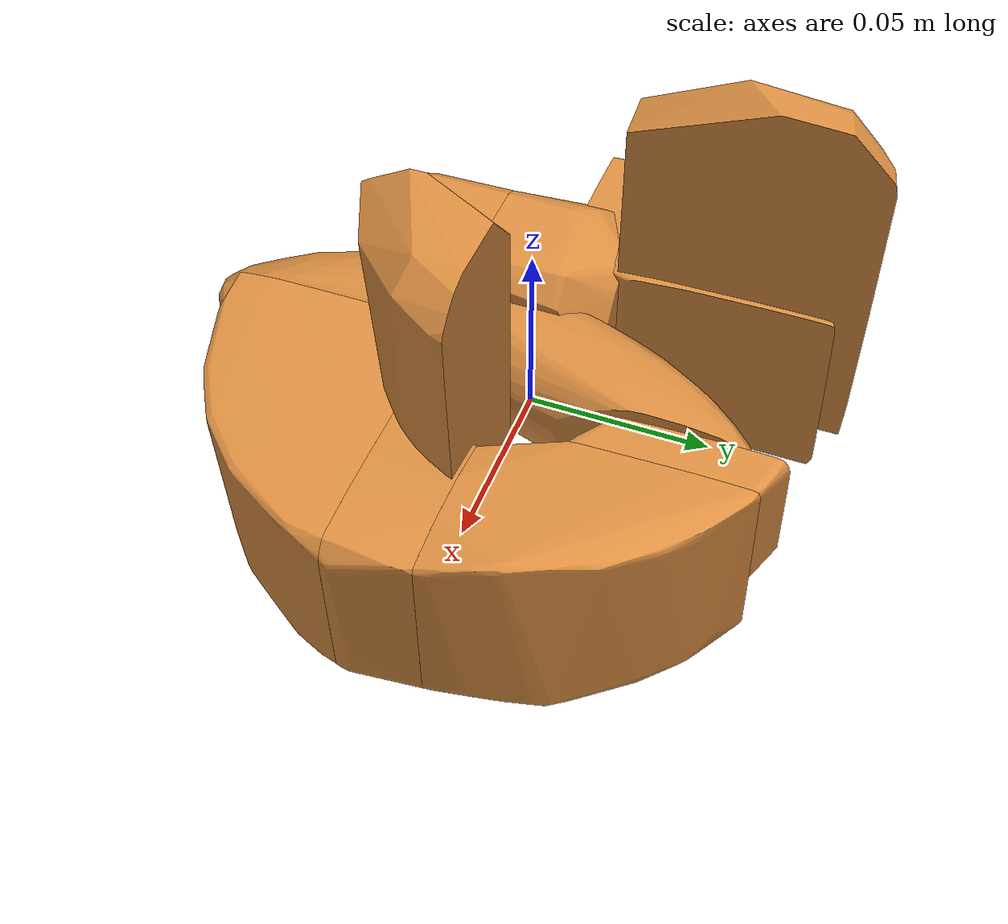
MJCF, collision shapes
<mujoco model="gun_functional">
  <compiler angle="radian"/>

  <asset>
    <material name="object" rgba="0.85 0.55 0.25 1"/>
    <mesh name="object_visual_mesh" file="source/top_watertight_tiny.obj"/>
    <mesh name="object_collision_mesh_000" file="collision/hull_000.obj"/>
    <mesh name="object_collision_mesh_001" file="collision/hull_001.obj"/>
    <mesh name="object_collision_mesh_002" file="collision/hull_002.obj"/>
    <mesh name="object_collision_mesh_003" file="collision/hull_003.obj"/>
    <mesh name="object_collision_mesh_004" file="collision/hull_004.obj"/>
    <mesh name="object_collision_mesh_005" file="collision/hull_005.obj"/>
    <mesh name="object_collision_mesh_006" file="collision/hull_006.obj"/>
    <mesh name="object_collision_mesh_007" file="collision/hull_007.obj"/>
    <mesh name="object_collision_mesh_008" file="collision/hull_008.obj"/>
    <mesh name="object_collision_mesh_009" file="collision/hull_009.obj"/>
    <mesh name="object_collision_mesh_010" file="collision/hull_010.obj"/>
  </asset>

  <worldbody>
    <body name="object">
      <inertial pos="-0.0173942 0.000272344 -0.000100858" quat="0.404528 0.57702 -0.40197 0.584658" mass="0.24875" diaginertia="0.000828065 0.000627929 0.00026984"/>
      <joint name="object_joint" type="free" damping="1e-05 1e-05 1e-05"/>
      <geom name="object_visual" type="mesh" contype="0" conaffinity="0" mass="0" material="object" rgba="1 0.423529 0.0392157 1" mesh="object_visual_mesh"/>
      <geom name="object_collision" type="mesh" condim="6" friction="0.2" mass="0" material="object" mesh="object_collision_mesh_000"/>
      <geom name="object_collision_001" type="mesh" condim="6" friction="0.2" mass="0" material="object" mesh="object_collision_mesh_001"/>
      <geom name="object_collision_002" type="mesh" condim="6" friction="0.2" mass="0" material="object" mesh="object_collision_mesh_002"/>
      <geom name="object_collision_003" type="mesh" condim="6" friction="0.2" mass="0" material="object" mesh="object_collision_mesh_003"/>
      <geom name="object_collision_004" type="mesh" condim="6" friction="0.2" mass="0" material="object" mesh="object_collision_mesh_004"/>
      <geom name="object_collision_005" type="mesh" condim="6" friction="0.2" mass="0" material="object" mesh="object_collision_mesh_005"/>
      <geom name="object_collision_006" type="mesh" condim="6" friction="0.2" mass="0" material="object" mesh="object_collision_mesh_006"/>
      <geom name="object_collision_007" type="mesh" condim="6" friction="0.2" mass="0" material="object" mesh="object_collision_mesh_007"/>
      <geom name="object_collision_008" type="mesh" condim="6" friction="0.2" mass="0" material="object" mesh="object_collision_mesh_008"/>
      <geom name="object_collision_009" type="mesh" condim="6" friction="0.2" mass="0" material="object" mesh="object_collision_mesh_009"/>
      <geom name="object_collision_010" type="mesh" condim="6" friction="0.2" mass="0" material="object" mesh="object_collision_mesh_010"/>
    </body>
  </worldbody>
</mujoco>
